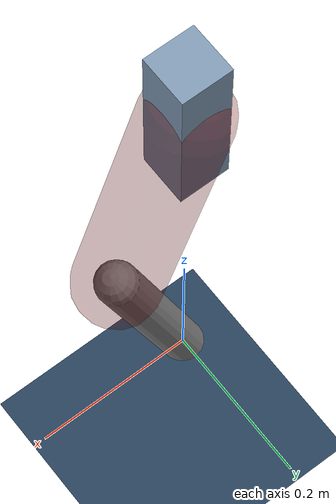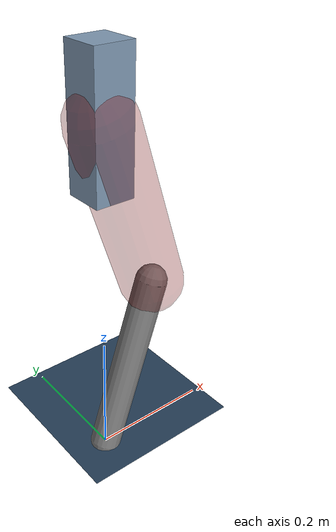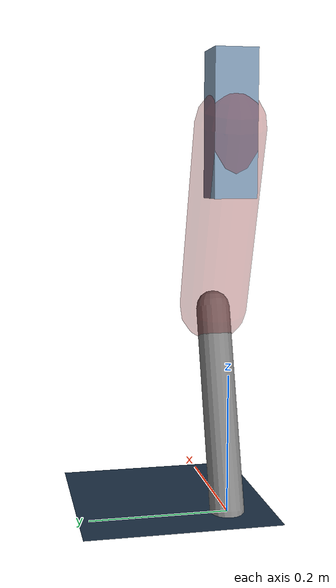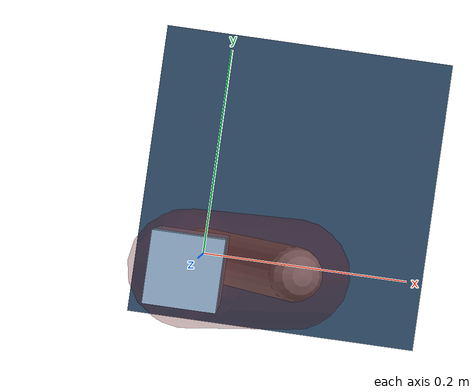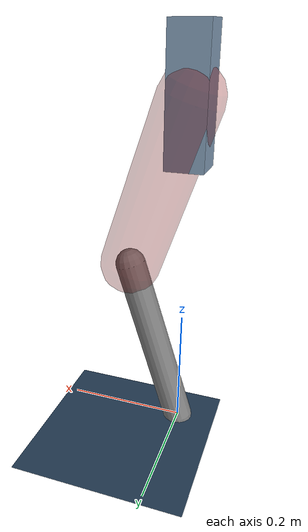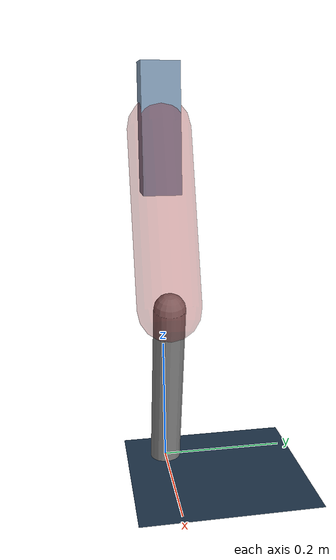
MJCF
<mujoco model="Hopper2D">
	<compiler inertiafromgeom="true" angle="radian" />
	<option timestep="0.001" integrator="implicit" cone="elliptic" solver="Newton" tolerance="1e-10" />

	<default>
		<geom contype="1" conaffinity="1" condim="3" friction="2 0.005 0.0001" solref="0.005 1" />
		<joint limited="true" damping="0.1" />
	</default>

	<asset>
		<texture name="skybox" type="skybox" builtin="gradient" rgb1=".4 .6 .8" rgb2="0 0 0" width="800" height="800" />
		<texture name="grid" type="2d" builtin="checker" rgb1=".1 .2 .3" rgb2=".2 .3 .4" width="300" height="300" mark="edge" markrgb=".2 .3 .4" />
		<material name="ground" texture="grid" texrepeat="1 1" texuniform="true" reflectance="0.1" />
		<material name="leg" rgba="0.5 0.6 0.7 1" />
	</asset>

	<worldbody>

		<geom name="floor" type="plane" size="5 5 0.25" material="ground" />

		<light directional="false" diffuse="0.8 0.8 0.8" specular="0.3 0.3 0.3" pos="0 0 2" dir="0 0 -1" />
		<light mode="targetbodycom" target="base" directional="false" diffuse="0.8 0.8 0.8" specular="0.3 0.3 0.3" pos="0 0 2" dir="0 0 -1" />

		<camera name="fixed" pos="0 -2 1" xyaxes="1 0 0 0 0 1" />
		<camera name="tracking" mode="trackcom" pos="0 -3 1" />

		<body name="root" pos="0 0 0.550713319627695">
			<joint name="slide_x" type="slide" axis="1 0 0" range="-100 100" />
			<joint name="slide_z" type="slide" axis="0 0 1" range="0 10" />

			<body name="base" pos="0 0 0">
				<geom name="torso" type="box" size="0.03 0.03 0.1" mass="1.9780000000000002" material="leg" />

				<body name="link1" pos="0 0 0" euler="0 1.241505295274284 0">
					<joint type="hinge" axis="0 -1 0" pos="0 0 0" name="hinge1" limited="true" range="-3.14 3.14" stiffness="0" damping="0.1" />
					<geom name="thigh" type="capsule" fromto="0 0 0 0.2801975564883389 0 0" size="0.05" rgba="0.5 0 0 0.3" mass="0.9356334025185149" />

					<body name="link2" pos="0.2801975564883389 0 0" euler="0 0.6365322493400206 0">
						<joint type="hinge" axis="0 -1 0" pos="0 0 0" name="hinge2" limited="true" range="-3.14 3.14" stiffness="0" damping="0.1" />
						<geom name="shank" type="capsule" fromto="0 0 0 0.29960007322527116 0 0" size="0.025" mass="0.4830800585802169" />

					</body>
				</body>
			</body>
		</body>
	</worldbody>

	<actuator>
		<motor name="torque1" joint="hinge1" ctrlrange="-8.8976205488969 8.8976205488969" ctrllimited="true" gear="1" />
		<motor name="torque2" joint="hinge2" ctrlrange="-71.69886209017723 71.69886209017723" ctrllimited="true" gear="1" />
	</actuator>
</mujoco>
